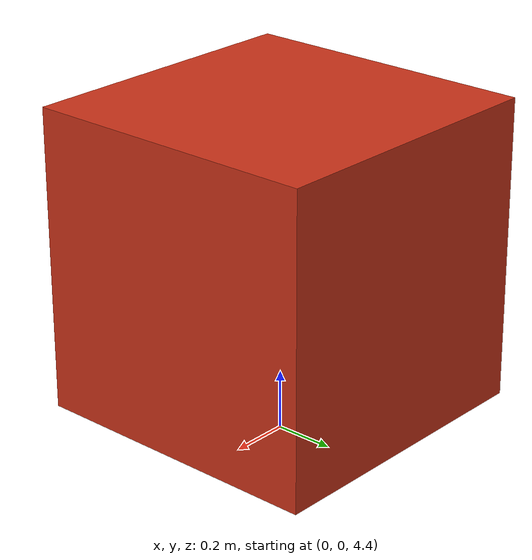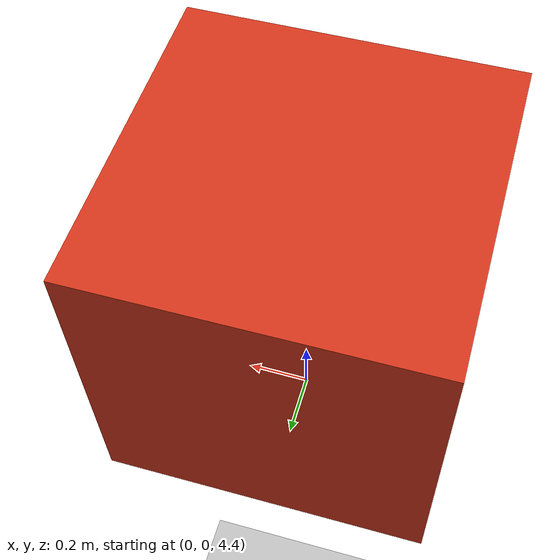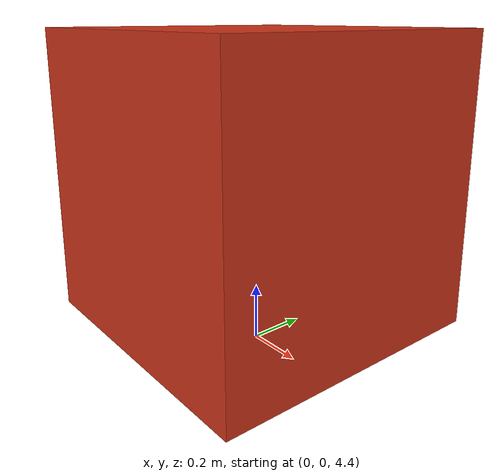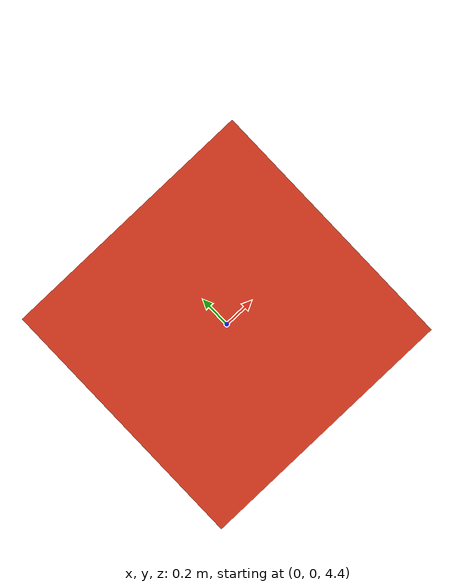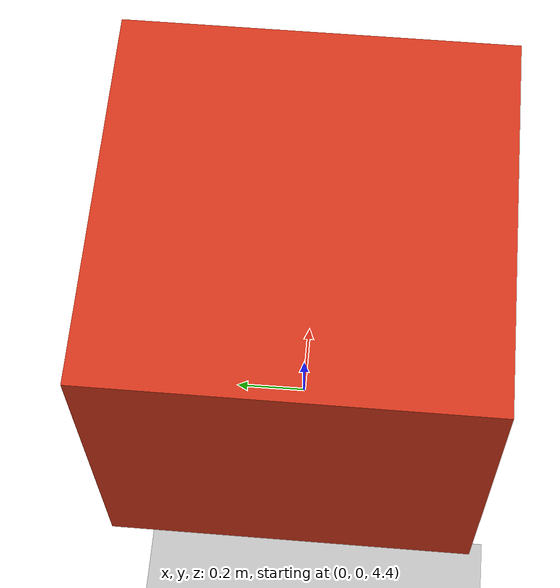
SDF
<?xml version="1.0"?>
<sdf version="1.10">
  <world name="multi_texture_terrain">
    <physics name="default_physics" type="ignored">
      <max_step_size>0.001</max_step_size>
      <real_time_factor>1.0</real_time_factor>
    </physics>

    <light name="sun" type="directional">
      <cast_shadows>true</cast_shadows>
      <pose>0 0 10 0 0 0</pose>
      <diffuse>0.8 0.8 0.8 1</diffuse>
      <specular>0.2 0.2 0.2 1</specular>
      <direction>-0.5 0.1 -0.9</direction>
    </light>

    <include>
      <uri>model://multi_texture_terrain</uri>
    </include>

    <include>
      <uri>model://falling_box</uri>
      <pose>0 0 5 0 0 0</pose>
    </include>
  </world>
</sdf>

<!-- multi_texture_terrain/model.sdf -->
<sdf version="1.10">
  <model name="multi_texture_terrain">
    <static>true</static>
    <link name="terrain_link">
      <visual name="terrain_visual">
        <geometry>
          <mesh>
            <uri>model://multi_texture_terrain/meshes/multi_texture_terrain.dae</uri>
          </mesh>
        </geometry>
      </visual>
      <collision name="terrain_collision">
        <geometry>
          <mesh>
            <uri>model://multi_texture_terrain/meshes/multi_texture_terrain.dae</uri>
          </mesh>
        </geometry>
      </collision>
    </link>
  </model>
</sdf>

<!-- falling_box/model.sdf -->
<sdf version="1.10">
  <model name="falling_box">
    <static>false</static>
    <link name="box_link">
      <inertial>
        <mass>1.0</mass>
        <inertia>
          <ixx>0.1667</ixx>
          <iyy>0.1667</iyy>
          <izz>0.1667</izz>
        </inertia>
      </inertial>
      <visual name="box_visual">
        <geometry>
          <box>
            <size>1 1 1</size>
          </box>
        </geometry>
        <material>
          <diffuse>0.8 0.2 0.1 1</diffuse>
        </material>
      </visual>
      <collision name="box_collision">
        <geometry>
          <box>
            <size>1 1 1</size>
          </box>
        </geometry>
      </collision>
    </link>
  </model>
</sdf>
